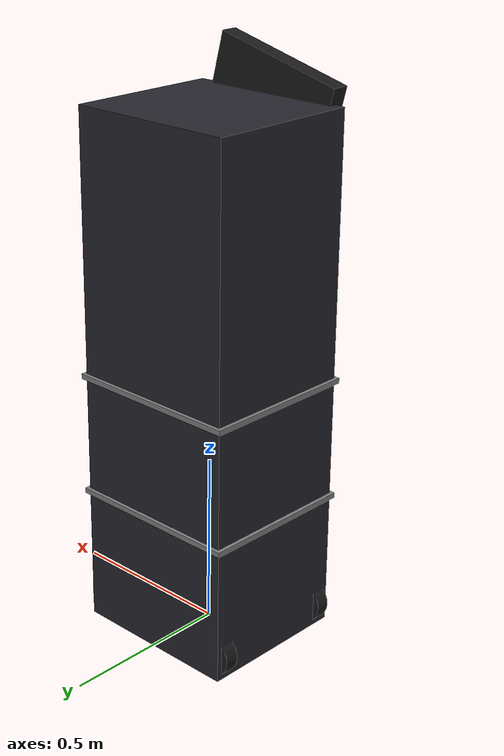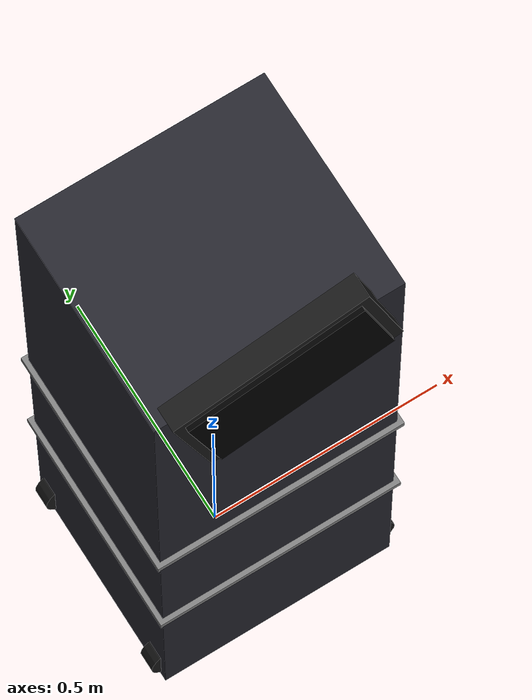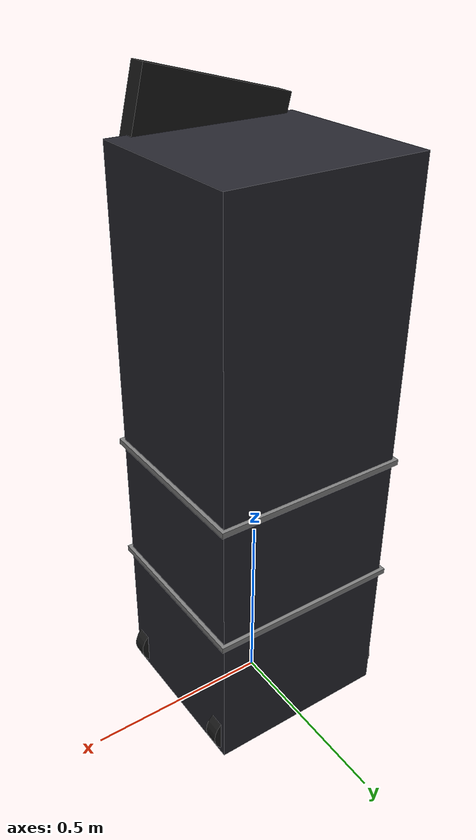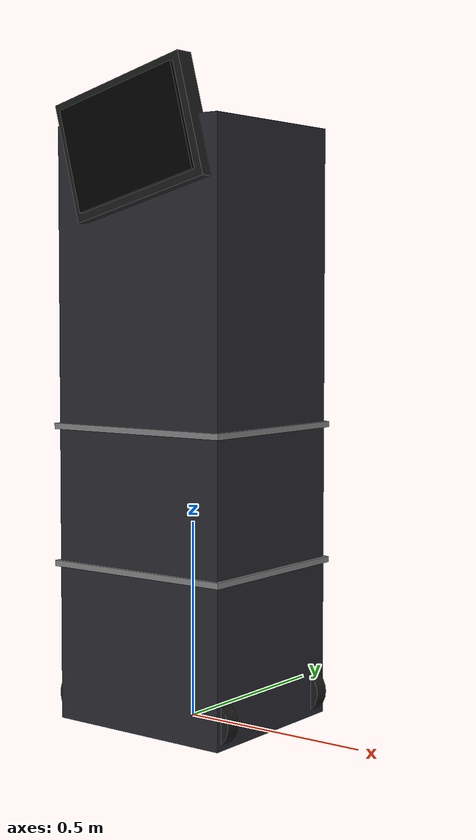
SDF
<?xml version="1.0"?>
<sdf version="1.6">
  <model name="endoscopy_cart">
    <static>true</static>
    <!-- Tower body stacked modules -->
    <link name="tower">
      <pose>0 0 0.75 0 0 0</pose>
      <collision name="c"><geometry><box><size>0.5 0.45 1.5</size></box></geometry></collision>
      <visual name="v">
        <geometry><box><size>0.5 0.45 1.5</size></box></geometry>
        <material><ambient>0.15 0.15 0.18 1</ambient><diffuse>0.15 0.15 0.18 1</diffuse></material>
      </visual>
    </link>
    <!-- Top monitor -->
    <link name="monitor">
      <pose>0 -0.23 1.45 0 -0.25 0</pose>
      <collision name="c"><geometry><box><size>0.4 0.05 0.3</size></box></geometry></collision>
      <visual name="v">
        <geometry><box><size>0.4 0.05 0.3</size></box></geometry>
        <material><ambient>0.1 0.1 0.1 1</ambient><diffuse>0.1 0.1 0.1 1</diffuse></material>
      </visual>
    </link>
    <!-- Monitor screen glow -->
    <link name="screen">
      <pose>0 -0.26 1.45 0 -0.25 0</pose>
      <visual name="v">
        <geometry><box><size>0.36 0.01 0.26</size></box></geometry>
        <material><ambient>0.0 0.05 0.0 1</ambient><diffuse>0 0 0 1</diffuse>
          <emissive>0.1 0.8 0.3 1</emissive></material>
      </visual>
    </link>
    <!-- Module separators -->
    <link name="divider1">
      <pose>0 0 0.4 0 0 0</pose>
      <visual name="v"><geometry><box><size>0.52 0.47 0.015</size></box></geometry>
        <material><ambient>0.5 0.5 0.5 1</ambient><diffuse>0.5 0.5 0.5 1</diffuse></material></visual>
    </link>
    <link name="divider2">
      <pose>0 0 0.75 0 0 0</pose>
      <visual name="v"><geometry><box><size>0.52 0.47 0.015</size></box></geometry>
        <material><ambient>0.5 0.5 0.5 1</ambient><diffuse>0.5 0.5 0.5 1</diffuse></material></visual>
    </link>
    <!-- Wheels (4) -->
    <link name="w1"><pose>0.21 0.19 0.06 1.5708 0 0</pose>
      <visual name="v"><geometry><cylinder><radius>0.06</radius><length>0.04</length></cylinder></geometry>
        <material><ambient>0.1 0.1 0.1 1</ambient><diffuse>0.1 0.1 0.1 1</diffuse></material></visual>
      <collision name="c"><geometry><cylinder><radius>0.06</radius><length>0.04</length></cylinder></geometry></collision>
    </link>
    <link name="w2"><pose>0.21 -0.19 0.06 1.5708 0 0</pose>
      <visual name="v"><geometry><cylinder><radius>0.06</radius><length>0.04</length></cylinder></geometry>
        <material><ambient>0.1 0.1 0.1 1</ambient><diffuse>0.1 0.1 0.1 1</diffuse></material></visual>
      <collision name="c"><geometry><cylinder><radius>0.06</radius><length>0.04</length></cylinder></geometry></collision>
    </link>
    <link name="w3"><pose>-0.21 0.19 0.06 1.5708 0 0</pose>
      <visual name="v"><geometry><cylinder><radius>0.06</radius><length>0.04</length></cylinder></geometry>
        <material><ambient>0.1 0.1 0.1 1</ambient><diffuse>0.1 0.1 0.1 1</diffuse></material></visual>
      <collision name="c"><geometry><cylinder><radius>0.06</radius><length>0.04</length></cylinder></geometry></collision>
    </link>
    <link name="w4"><pose>-0.21 -0.19 0.06 1.5708 0 0</pose>
      <visual name="v"><geometry><cylinder><radius>0.06</radius><length>0.04</length></cylinder></geometry>
        <material><ambient>0.1 0.1 0.1 1</ambient><diffuse>0.1 0.1 0.1 1</diffuse></material></visual>
      <collision name="c"><geometry><cylinder><radius>0.06</radius><length>0.04</length></cylinder></geometry></collision>
    </link>
  </model>
</sdf>
